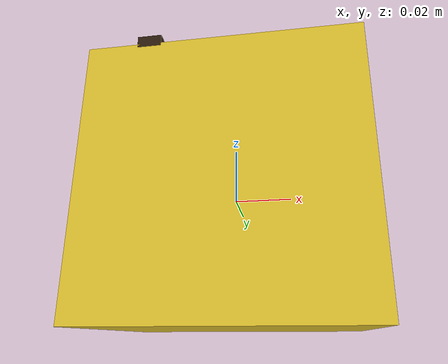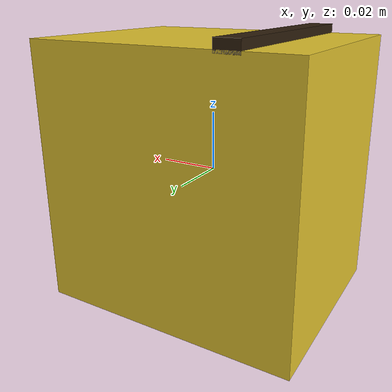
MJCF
<?xml version="1.0" encoding="UTF-8"?>
<!-- Texture-only clean-room surrogate with a replaceable accent geom. -->
<mujoco model="libero_vlabench_perception_texture_primitive">
  <worldbody>
    <body>
      <body name="object">
        <geom name="texture_visual" type="box" group="1" contype="0" conaffinity="0"
              size="0.045 0.035 0.045" rgba="0.88 0.76 0.18 1"/>
        <geom name="texture_accent" type="box" group="1" contype="0" conaffinity="0"
              pos="-0.024 0 0.046" size="0.004 0.035 0.002" rgba="0.18 0.12 0.05 1"/>
        <geom name="texture_collision" type="box" group="0" size="0.043 0.033 0.043"
              mass="0.08"/>
      </body>
      <site name="bottom_site" pos="0 0 -0.045" size="0.005" rgba="0 0 0 0"/>
      <site name="top_site" pos="0 0 0.045" size="0.005" rgba="0 0 0 0"/>
      <site name="horizontal_radius_site" pos="0.045 0 0" size="0.005" rgba="0 0 0 0"/>
    </body>
  </worldbody>
</mujoco>
